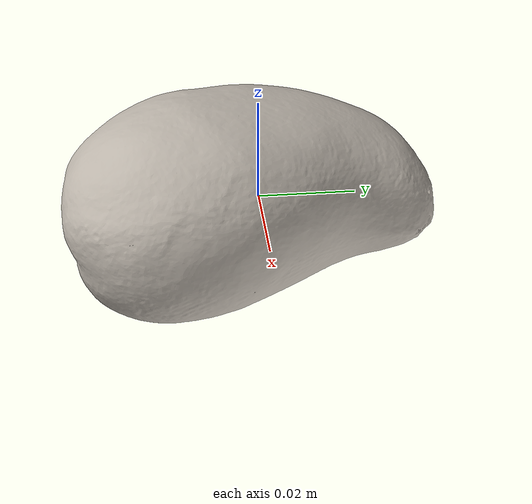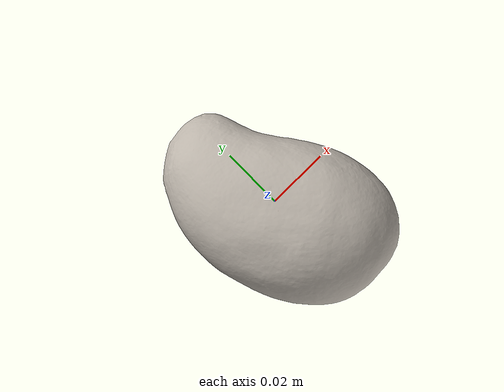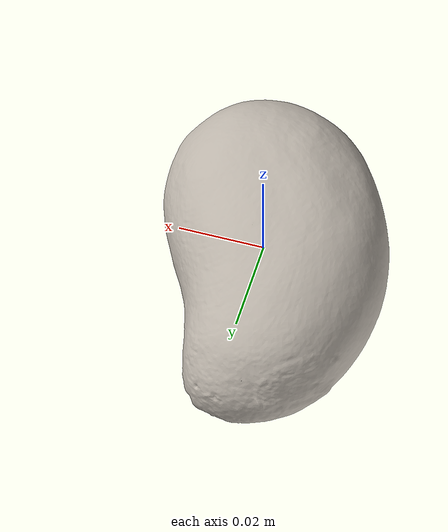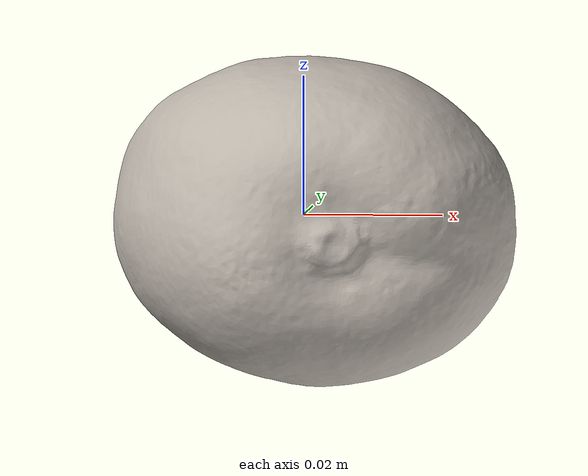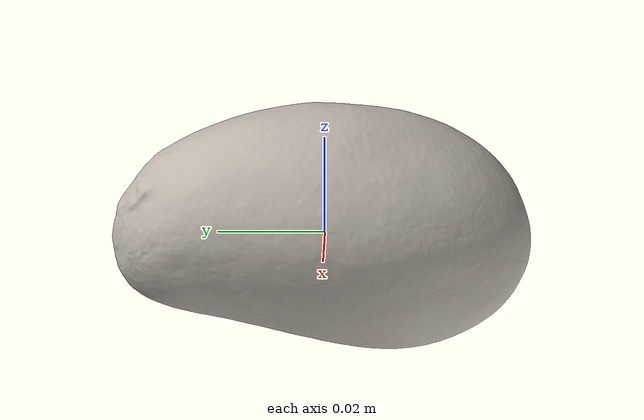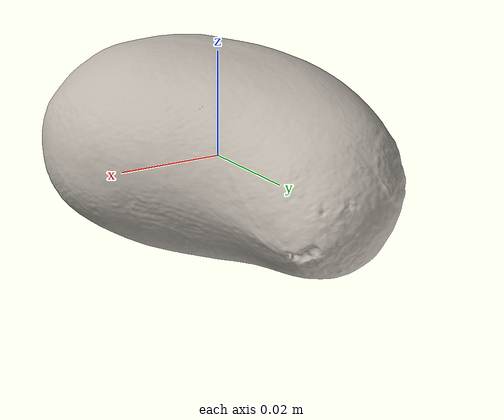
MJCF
<mujoco model="mango_12">
  <asset>
    <mesh file="visual/model_normalized_0.obj" name="model_normalized_0_vis" scale="0.075 0.075 0.075" refquat="0.7071067811865475 0.7071067811865476 0.0 0.0"/>
    <mesh file="collision/model_normalized_collision_22.obj" name="model_normalized_collision_22._coll" scale="0.075 0.075 0.075" refquat="0.7071067811865475 0.7071067811865476 0.0 0.0"/>
    <mesh file="collision/model_normalized_collision_23.obj" name="model_normalized_collision_23._coll" scale="0.075 0.075 0.075" refquat="0.7071067811865475 0.7071067811865476 0.0 0.0"/>
    <mesh file="collision/model_normalized_collision_21.obj" name="model_normalized_collision_21._coll" scale="0.075 0.075 0.075" refquat="0.7071067811865475 0.7071067811865476 0.0 0.0"/>
    <mesh file="collision/model_normalized_collision_20.obj" name="model_normalized_collision_20._coll" scale="0.075 0.075 0.075" refquat="0.7071067811865475 0.7071067811865476 0.0 0.0"/>
    <mesh file="collision/model_normalized_collision_24.obj" name="model_normalized_collision_24._coll" scale="0.075 0.075 0.075" refquat="0.7071067811865475 0.7071067811865476 0.0 0.0"/>
    <mesh file="collision/model_normalized_collision_30.obj" name="model_normalized_collision_30._coll" scale="0.075 0.075 0.075" refquat="0.7071067811865475 0.7071067811865476 0.0 0.0"/>
    <mesh file="collision/model_normalized_collision_18.obj" name="model_normalized_collision_18._coll" scale="0.075 0.075 0.075" refquat="0.7071067811865475 0.7071067811865476 0.0 0.0"/>
    <mesh file="collision/model_normalized_collision_19.obj" name="model_normalized_collision_19._coll" scale="0.075 0.075 0.075" refquat="0.7071067811865475 0.7071067811865476 0.0 0.0"/>
    <mesh file="collision/model_normalized_collision_31.obj" name="model_normalized_collision_31._coll" scale="0.075 0.075 0.075" refquat="0.7071067811865475 0.7071067811865476 0.0 0.0"/>
    <mesh file="collision/model_normalized_collision_25.obj" name="model_normalized_collision_25._coll" scale="0.075 0.075 0.075" refquat="0.7071067811865475 0.7071067811865476 0.0 0.0"/>
    <mesh file="collision/model_normalized_collision_27.obj" name="model_normalized_collision_27._coll" scale="0.075 0.075 0.075" refquat="0.7071067811865475 0.7071067811865476 0.0 0.0"/>
    <mesh file="collision/model_normalized_collision_26.obj" name="model_normalized_collision_26._coll" scale="0.075 0.075 0.075" refquat="0.7071067811865475 0.7071067811865476 0.0 0.0"/>
    <mesh file="collision/model_normalized_collision_9.obj" name="model_normalized_collision_9._coll" scale="0.075 0.075 0.075" refquat="0.7071067811865475 0.7071067811865476 0.0 0.0"/>
    <mesh file="collision/model_normalized_collision_8.obj" name="model_normalized_collision_8._coll" scale="0.075 0.075 0.075" refquat="0.7071067811865475 0.7071067811865476 0.0 0.0"/>
    <mesh file="collision/model_normalized_collision_6.obj" name="model_normalized_collision_6._coll" scale="0.075 0.075 0.075" refquat="0.7071067811865475 0.7071067811865476 0.0 0.0"/>
    <mesh file="collision/model_normalized_collision_7.obj" name="model_normalized_collision_7._coll" scale="0.075 0.075 0.075" refquat="0.7071067811865475 0.7071067811865476 0.0 0.0"/>
    <mesh file="collision/model_normalized_collision_5.obj" name="model_normalized_collision_5._coll" scale="0.075 0.075 0.075" refquat="0.7071067811865475 0.7071067811865476 0.0 0.0"/>
    <mesh file="collision/model_normalized_collision_4.obj" name="model_normalized_collision_4._coll" scale="0.075 0.075 0.075" refquat="0.7071067811865475 0.7071067811865476 0.0 0.0"/>
    <mesh file="collision/model_normalized_collision_0.obj" name="model_normalized_collision_0._coll" scale="0.075 0.075 0.075" refquat="0.7071067811865475 0.7071067811865476 0.0 0.0"/>
    <mesh file="collision/model_normalized_collision_1.obj" name="model_normalized_collision_1._coll" scale="0.075 0.075 0.075" refquat="0.7071067811865475 0.7071067811865476 0.0 0.0"/>
    <mesh file="collision/model_normalized_collision_3.obj" name="model_normalized_collision_3._coll" scale="0.075 0.075 0.075" refquat="0.7071067811865475 0.7071067811865476 0.0 0.0"/>
    <mesh file="collision/model_normalized_collision_2.obj" name="model_normalized_collision_2._coll" scale="0.075 0.075 0.075" refquat="0.7071067811865475 0.7071067811865476 0.0 0.0"/>
    <mesh file="collision/model_normalized_collision_17.obj" name="model_normalized_collision_17._coll" scale="0.075 0.075 0.075" refquat="0.7071067811865475 0.7071067811865476 0.0 0.0"/>
    <mesh file="collision/model_normalized_collision_16.obj" name="model_normalized_collision_16._coll" scale="0.075 0.075 0.075" refquat="0.7071067811865475 0.7071067811865476 0.0 0.0"/>
    <mesh file="collision/model_normalized_collision_28.obj" name="model_normalized_collision_28._coll" scale="0.075 0.075 0.075" refquat="0.7071067811865475 0.7071067811865476 0.0 0.0"/>
    <mesh file="collision/model_normalized_collision_14.obj" name="model_normalized_collision_14._coll" scale="0.075 0.075 0.075" refquat="0.7071067811865475 0.7071067811865476 0.0 0.0"/>
    <mesh file="collision/model_normalized_collision_15.obj" name="model_normalized_collision_15._coll" scale="0.075 0.075 0.075" refquat="0.7071067811865475 0.7071067811865476 0.0 0.0"/>
    <mesh file="collision/model_normalized_collision_29.obj" name="model_normalized_collision_29._coll" scale="0.075 0.075 0.075" refquat="0.7071067811865475 0.7071067811865476 0.0 0.0"/>
    <mesh file="collision/model_normalized_collision_11.obj" name="model_normalized_collision_11._coll" scale="0.075 0.075 0.075" refquat="0.7071067811865475 0.7071067811865476 0.0 0.0"/>
    <mesh file="collision/model_normalized_collision_10.obj" name="model_normalized_collision_10._coll" scale="0.075 0.075 0.075" refquat="0.7071067811865475 0.7071067811865476 0.0 0.0"/>
    <mesh file="collision/model_normalized_collision_12.obj" name="model_normalized_collision_12._coll" scale="0.075 0.075 0.075" refquat="0.7071067811865475 0.7071067811865476 0.0 0.0"/>
    <mesh file="collision/model_normalized_collision_13.obj" name="model_normalized_collision_13._coll" scale="0.075 0.075 0.075" refquat="0.7071067811865475 0.7071067811865476 0.0 0.0"/>
    <texture type="2d" name="image0" file="visual/image0.png"/>
    <material name="material0.005" texture="image0" specular="0.5" shininess="0.001788855"/>
  </asset>
  <worldbody>
  <body>
      <body name="object">
        <geom solimp="0.998 0.998 0.001" solref="0.001 1" density="100" friction="0.95 0.3 0.1" type="mesh" mesh="model_normalized_0_vis" conaffinity="0" contype="0" group="1" material="material0.005"/>
        <geom solimp="0.998 0.998 0.001" solref="0.001 1" density="100" friction="0.95 0.3 0.1" type="mesh" mesh="model_normalized_collision_22._coll" group="0" rgba="0.8 0.8 0.8 0.0"/>
        <geom solimp="0.998 0.998 0.001" solref="0.001 1" density="100" friction="0.95 0.3 0.1" type="mesh" mesh="model_normalized_collision_23._coll" group="0" rgba="0.8 0.8 0.8 0.0"/>
        <geom solimp="0.998 0.998 0.001" solref="0.001 1" density="100" friction="0.95 0.3 0.1" type="mesh" mesh="model_normalized_collision_21._coll" group="0" rgba="0.8 0.8 0.8 0.0"/>
        <geom solimp="0.998 0.998 0.001" solref="0.001 1" density="100" friction="0.95 0.3 0.1" type="mesh" mesh="model_normalized_collision_20._coll" group="0" rgba="0.8 0.8 0.8 0.0"/>
        <geom solimp="0.998 0.998 0.001" solref="0.001 1" density="100" friction="0.95 0.3 0.1" type="mesh" mesh="model_normalized_collision_24._coll" group="0" rgba="0.8 0.8 0.8 0.0"/>
        <geom solimp="0.998 0.998 0.001" solref="0.001 1" density="100" friction="0.95 0.3 0.1" type="mesh" mesh="model_normalized_collision_30._coll" group="0" rgba="0.8 0.8 0.8 0.0"/>
        <geom solimp="0.998 0.998 0.001" solref="0.001 1" density="100" friction="0.95 0.3 0.1" type="mesh" mesh="model_normalized_collision_18._coll" group="0" rgba="0.8 0.8 0.8 0.0"/>
        <geom solimp="0.998 0.998 0.001" solref="0.001 1" density="100" friction="0.95 0.3 0.1" type="mesh" mesh="model_normalized_collision_19._coll" group="0" rgba="0.8 0.8 0.8 0.0"/>
        <geom solimp="0.998 0.998 0.001" solref="0.001 1" density="100" friction="0.95 0.3 0.1" type="mesh" mesh="model_normalized_collision_31._coll" group="0" rgba="0.8 0.8 0.8 0.0"/>
        <geom solimp="0.998 0.998 0.001" solref="0.001 1" density="100" friction="0.95 0.3 0.1" type="mesh" mesh="model_normalized_collision_25._coll" group="0" rgba="0.8 0.8 0.8 0.0"/>
        <geom solimp="0.998 0.998 0.001" solref="0.001 1" density="100" friction="0.95 0.3 0.1" type="mesh" mesh="model_normalized_collision_27._coll" group="0" rgba="0.8 0.8 0.8 0.0"/>
        <geom solimp="0.998 0.998 0.001" solref="0.001 1" density="100" friction="0.95 0.3 0.1" type="mesh" mesh="model_normalized_collision_26._coll" group="0" rgba="0.8 0.8 0.8 0.0"/>
        <geom solimp="0.998 0.998 0.001" solref="0.001 1" density="100" friction="0.95 0.3 0.1" type="mesh" mesh="model_normalized_collision_9._coll" group="0" rgba="0.8 0.8 0.8 0.0"/>
        <geom solimp="0.998 0.998 0.001" solref="0.001 1" density="100" friction="0.95 0.3 0.1" type="mesh" mesh="model_normalized_collision_8._coll" group="0" rgba="0.8 0.8 0.8 0.0"/>
        <geom solimp="0.998 0.998 0.001" solref="0.001 1" density="100" friction="0.95 0.3 0.1" type="mesh" mesh="model_normalized_collision_6._coll" group="0" rgba="0.8 0.8 0.8 0.0"/>
        <geom solimp="0.998 0.998 0.001" solref="0.001 1" density="100" friction="0.95 0.3 0.1" type="mesh" mesh="model_normalized_collision_7._coll" group="0" rgba="0.8 0.8 0.8 0.0"/>
        <geom solimp="0.998 0.998 0.001" solref="0.001 1" density="100" friction="0.95 0.3 0.1" type="mesh" mesh="model_normalized_collision_5._coll" group="0" rgba="0.8 0.8 0.8 0.0"/>
        <geom solimp="0.998 0.998 0.001" solref="0.001 1" density="100" friction="0.95 0.3 0.1" type="mesh" mesh="model_normalized_collision_4._coll" group="0" rgba="0.8 0.8 0.8 0.0"/>
        <geom solimp="0.998 0.998 0.001" solref="0.001 1" density="100" friction="0.95 0.3 0.1" type="mesh" mesh="model_normalized_collision_0._coll" group="0" rgba="0.8 0.8 0.8 0.0"/>
        <geom solimp="0.998 0.998 0.001" solref="0.001 1" density="100" friction="0.95 0.3 0.1" type="mesh" mesh="model_normalized_collision_1._coll" group="0" rgba="0.8 0.8 0.8 0.0"/>
        <geom solimp="0.998 0.998 0.001" solref="0.001 1" density="100" friction="0.95 0.3 0.1" type="mesh" mesh="model_normalized_collision_3._coll" group="0" rgba="0.8 0.8 0.8 0.0"/>
        <geom solimp="0.998 0.998 0.001" solref="0.001 1" density="100" friction="0.95 0.3 0.1" type="mesh" mesh="model_normalized_collision_2._coll" group="0" rgba="0.8 0.8 0.8 0.0"/>
        <geom solimp="0.998 0.998 0.001" solref="0.001 1" density="100" friction="0.95 0.3 0.1" type="mesh" mesh="model_normalized_collision_17._coll" group="0" rgba="0.8 0.8 0.8 0.0"/>
        <geom solimp="0.998 0.998 0.001" solref="0.001 1" density="100" friction="0.95 0.3 0.1" type="mesh" mesh="model_normalized_collision_16._coll" group="0" rgba="0.8 0.8 0.8 0.0"/>
        <geom solimp="0.998 0.998 0.001" solref="0.001 1" density="100" friction="0.95 0.3 0.1" type="mesh" mesh="model_normalized_collision_28._coll" group="0" rgba="0.8 0.8 0.8 0.0"/>
        <geom solimp="0.998 0.998 0.001" solref="0.001 1" density="100" friction="0.95 0.3 0.1" type="mesh" mesh="model_normalized_collision_14._coll" group="0" rgba="0.8 0.8 0.8 0.0"/>
        <geom solimp="0.998 0.998 0.001" solref="0.001 1" density="100" friction="0.95 0.3 0.1" type="mesh" mesh="model_normalized_collision_15._coll" group="0" rgba="0.8 0.8 0.8 0.0"/>
        <geom solimp="0.998 0.998 0.001" solref="0.001 1" density="100" friction="0.95 0.3 0.1" type="mesh" mesh="model_normalized_collision_29._coll" group="0" rgba="0.8 0.8 0.8 0.0"/>
        <geom solimp="0.998 0.998 0.001" solref="0.001 1" density="100" friction="0.95 0.3 0.1" type="mesh" mesh="model_normalized_collision_11._coll" group="0" rgba="0.8 0.8 0.8 0.0"/>
        <geom solimp="0.998 0.998 0.001" solref="0.001 1" density="100" friction="0.95 0.3 0.1" type="mesh" mesh="model_normalized_collision_10._coll" group="0" rgba="0.8 0.8 0.8 0.0"/>
        <geom solimp="0.998 0.998 0.001" solref="0.001 1" density="100" friction="0.95 0.3 0.1" type="mesh" mesh="model_normalized_collision_12._coll" group="0" rgba="0.8 0.8 0.8 0.0"/>
        <geom solimp="0.998 0.998 0.001" solref="0.001 1" density="100" friction="0.95 0.3 0.1" type="mesh" mesh="model_normalized_collision_13._coll" group="0" rgba="0.8 0.8 0.8 0.0"/>
      </body>
      <site rgba="0 0 0 0" size="0.005" pos="-0.00041751379999999913 -8.270514999999893e-05 -0.030327076999999994" name="bottom_site"/>
      <site rgba="0 0 0 0" size="0.005" pos="-0.00041751379999999913 -8.270514999999893e-05 0.031030625999999995" name="top_site"/>
      <site rgba="0 0 0 0" size="0.005" pos="0.03849328449999999 0.05394301109999998 0.0003517744999999974" name="horizontal_radius_site"/>
    </body>
    </worldbody>
</mujoco>
